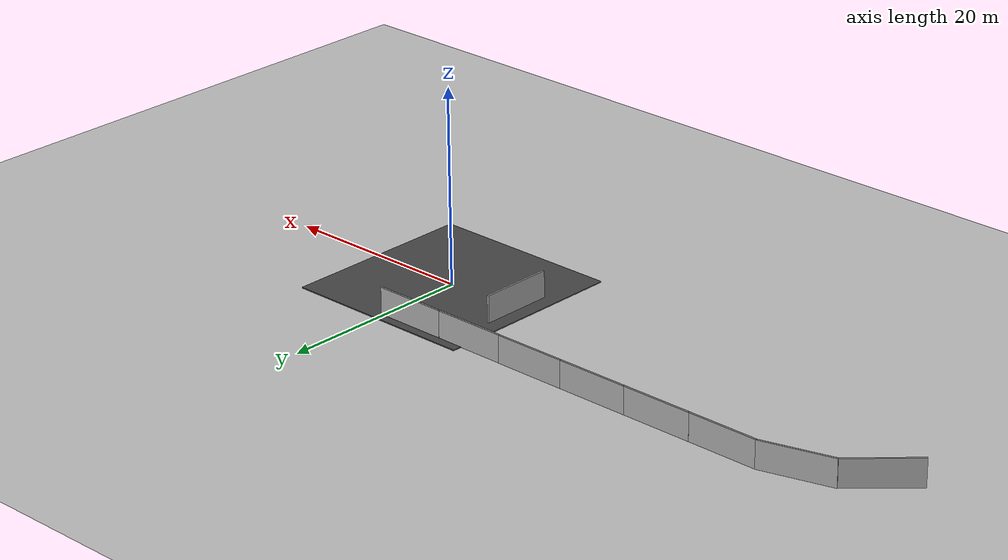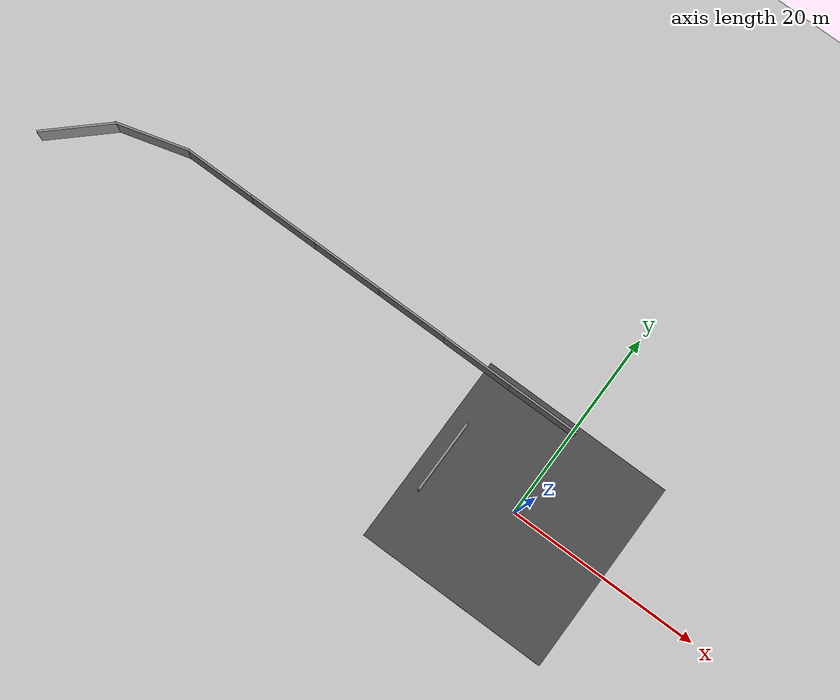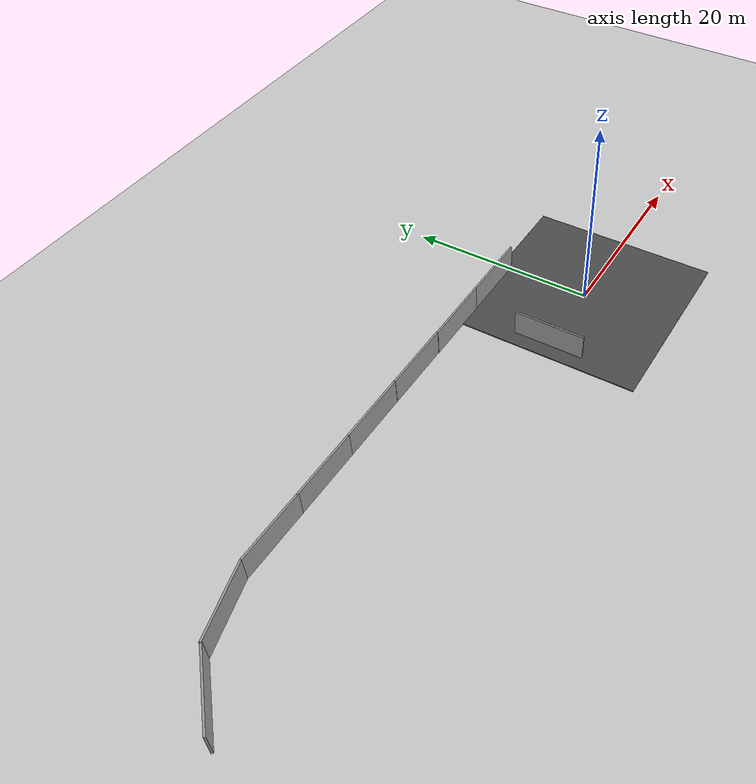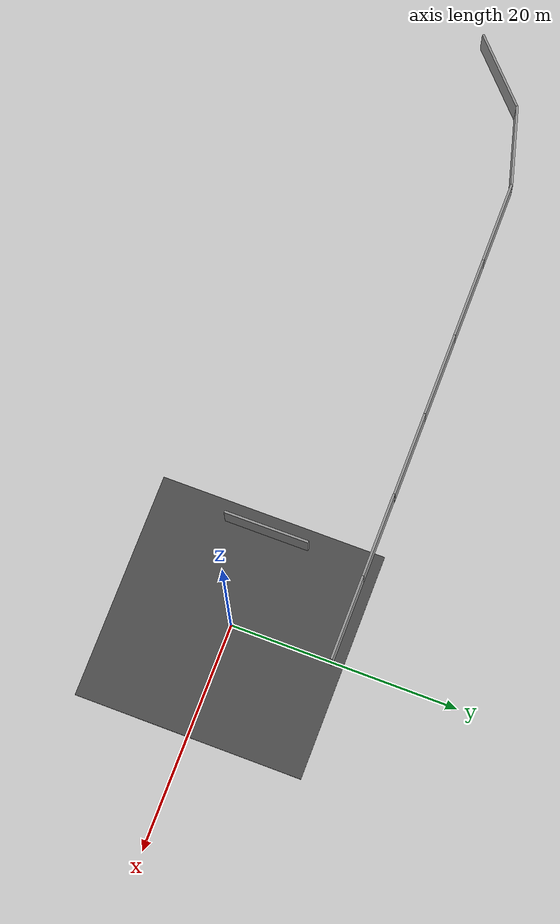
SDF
<sdf version="1.6">
 <world name="default">
  <light name="sun" type="directional">
   <pose>0 0 10 0 -0 0</pose>
   <diffuse>0.8 0.8 0.8 1</diffuse>
   <specular>0.2 0.2 0.2 1</specular>
   <attenuation>
    <range>1000</range>
    <constant>0.9</constant>
    <linear>0.01</linear>
    <quadratic>0.001</quadratic>
   </attenuation>
   <direction>-0.5 0.1 -0.9</direction>
  </light>
  <model name="ground_plane">
   <static>1</static>
   <link name="link">
    <collision name="collision">
     <geometry><plane><normal>0 0 1</normal><size>100 100</size></plane></geometry>
     <surface><friction><ode><mu>100</mu><mu2>50</mu2></ode></friction></surface>
    </collision>
    <visual name="visual">
     <cast_shadows>0</cast_shadows>
     <geometry><plane><normal>0 0 1</normal><size>100 100</size></plane></geometry>
     <material>
      <script><uri>file://media/materials/scripts/gazebo.material</uri><name>Gazebo/Grey</name></script>
     </material>
    </visual>
   </link>
  </model>
  <model name="asphalt_plane">
   <static>1</static>
   <link name="link">
    <collision name="collision"><geometry><box><size>20 20 0.1</size></box></geometry></collision>
    <visual name="visual">
     <cast_shadows>0</cast_shadows>
     <geometry><box><size>20 20 0.1</size></box></geometry>
     <material>
      <script>
       <uri>model://asphalt_plane/materials/scripts</uri>
       <uri>model://asphalt_plane/materials/textures</uri>
       <name>vrc/asphalt</name>
      </script>
     </material>
    </visual>
   </link>
  </model>
  <physics name="default_physics" default="0" type="ode">
   <ode>
    <solver>
     <type>quick</type>
     <iters>10</iters>
     <sor>1.3</sor>
     <use_dynamic_moi_rescaling>0</use_dynamic_moi_rescaling>
    </solver>
    <constraints>
     <cfm>0</cfm>
     <erp>0.2</erp>
     <contact_max_correcting_vel>100</contact_max_correcting_vel>
     <contact_surface_layer>0.001</contact_surface_layer>
    </constraints>
   </ode>
   <max_step_size>0.002</max_step_size>
   <real_time_factor>1</real_time_factor>
   <real_time_update_rate>500</real_time_update_rate>
  </physics>
  <model name="grey_wall">
   <static>1</static>
   <link name="link">
    <pose>0 0 1.4 0 -0 0</pose>
    <collision name="collision"><geometry><box><size>7.5 0.2 2.8</size></box></geometry></collision>
    <visual name="visual">
     <cast_shadows>0</cast_shadows>
     <geometry><box><size>7.5 0.2 2.8</size></box></geometry>
     <material>
      <script>
       <uri>model://grey_wall/materials/scripts</uri>
       <uri>model://grey_wall/materials/textures</uri>
       <name>vrc/grey_wall</name>
      </script>
     </material>
    </visual>
   </link>
   <pose>-8.34545 0 0 0 0 -1.57</pose>
  </model>
  <model name="grey_wall2">
   <static>1</static>
   <link name="link">
    <pose>0 0 1.4 0 -0 0</pose>
    <collision name="collision"><geometry><box><size>7.5 0.2 2.8</size></box></geometry></collision>
    <visual name="visual">
     <cast_shadows>0</cast_shadows>
     <geometry><box><size>7.5 0.2 2.8</size></box></geometry>
     <material>
      <script>
       <uri>model://grey_wall/materials/scripts</uri>
       <uri>model://grey_wall/materials/textures</uri>
       <name>vrc/grey_wall</name>
      </script>
     </material>
    </visual>
   </link>
   <pose>-3.5 9 0 0 -0 0</pose>
  </model>
  <gravity>0 0 -9.8066</gravity>
  <magnetic_field>6e-06 2.3e-05 -4.2e-05</magnetic_field>
  <atmosphere type="adiabatic"/>
  <scene><ambient>0.4 0.4 0.4 1</ambient><background>0.7 0.7 0.7 1</background><shadows>1</shadows></scene>
  <spherical_coordinates>
   <surface_model>EARTH_WGS84</surface_model>
   <latitude_deg>0</latitude_deg>
   <longitude_deg>0</longitude_deg>
   <elevation>0</elevation>
   <heading_deg>0</heading_deg>
  </spherical_coordinates>
  <model name="grey_wall2_clone">
   <static>1</static>
   <link name="link">
    <pose>0 0 1.4 0 -0 0</pose>
    <collision name="collision"><geometry><box><size>7.5 0.2 2.8</size></box></geometry></collision>
    <visual name="visual">
     <cast_shadows>0</cast_shadows>
     <geometry><box><size>7.5 0.2 2.8</size></box></geometry>
     <material>
      <script>
       <uri>model://grey_wall/materials/scripts</uri>
       <uri>model://grey_wall/materials/textures</uri>
       <name>vrc/grey_wall</name>
      </script>
     </material>
    </visual>
   </link>
   <pose>-11.0071 9.00248 0 0 -0 0</pose>
  </model>
  <model name="grey_wall2_clone_0">
   <static>1</static>
   <link name="link">
    <pose>0 0 1.4 0 -0 0</pose>
    <collision name="collision"><geometry><box><size>7.5 0.2 2.8</size></box></geometry></collision>
    <visual name="visual">
     <cast_shadows>0</cast_shadows>
     <geometry><box><size>7.5 0.2 2.8</size></box></geometry>
     <material>
      <script>
       <uri>model://grey_wall/materials/scripts</uri>
       <uri>model://grey_wall/materials/textures</uri>
       <name>vrc/grey_wall</name>
      </script>
     </material>
    </visual>
   </link>
   <pose>-18.5083 9.02979 0 0 -0 0</pose>
  </model>
  <model name="grey_wall2_clone_0_clone">
   <static>1</static>
   <link name="link">
    <pose>0 0 1.4 0 -0 0</pose>
    <collision name="collision"><geometry><box><size>7.5 0.2 2.8</size></box></geometry></collision>
    <visual name="visual">
     <cast_shadows>0</cast_shadows>
     <geometry><box><size>7.5 0.2 2.8</size></box></geometry>
     <material>
      <script>
       <uri>model://grey_wall/materials/scripts</uri>
       <uri>model://grey_wall/materials/textures</uri>
       <name>vrc/grey_wall</name>
      </script>
     </material>
    </visual>
   </link>
   <pose>-26.0259 9.02918 0 0 -0 0</pose>
  </model>
  <model name="grey_wall2_clone_0_clone_0">
   <static>1</static>
   <link name="link">
    <pose>0 0 1.4 0 -0 0</pose>
    <collision name="collision"><geometry><box><size>7.5 0.2 2.8</size></box></geometry></collision>
    <visual name="visual">
     <cast_shadows>0</cast_shadows>
     <geometry><box><size>7.5 0.2 2.8</size></box></geometry>
     <material>
      <script>
       <uri>model://grey_wall/materials/scripts</uri>
       <uri>model://grey_wall/materials/textures</uri>
       <name>vrc/grey_wall</name>
      </script>
     </material>
    </visual>
   </link>
   <pose>-33.4516 9.02141 0 0 -0 0</pose>
  </model>
  <model name="grey_wall2_clone_0_clone_0_clone">
   <static>1</static>
   <link name="link">
    <pose>0 0 1.4 0 -0 0</pose>
    <collision name="collision"><geometry><box><size>7.5 0.2 2.8</size></box></geometry></collision>
    <visual name="visual">
     <cast_shadows>0</cast_shadows>
     <geometry><box><size>7.5 0.2 2.8</size></box></geometry>
     <material>
      <script>
       <uri>model://grey_wall/materials/scripts</uri>
       <uri>model://grey_wall/materials/textures</uri>
       <name>vrc/grey_wall</name>
      </script>
     </material>
    </visual>
   </link>
   <pose>-40.8096 9.01785 0 0 -0 0</pose>
  </model>
  <model name="grey_wall2_clone_0_clone_0_clone_clone">
   <static>1</static>
   <link name="link">
    <pose>0 0 1.4 0 -0 0</pose>
    <collision name="collision"><geometry><box><size>7.5 0.2 2.8</size></box></geometry></collision>
    <visual name="visual">
     <cast_shadows>0</cast_shadows>
     <geometry><box><size>7.5 0.2 2.8</size></box></geometry>
     <material>
      <script>
       <uri>model://grey_wall/materials/scripts</uri>
       <uri>model://grey_wall/materials/textures</uri>
       <name>vrc/grey_wall</name>
      </script>
     </material>
    </visual>
   </link>
   <pose>-48.1309 8.03301 0 0 -0 0.271922</pose>
  </model>
  <model name="grey_wall2_clone_0_clone_0_clone_clone_clone">
   <static>1</static>
   <link name="link">
    <pose>0 0 1.4 0 -0 0</pose>
    <collision name="collision"><geometry><box><size>7.5 0.2 2.8</size></box></geometry></collision>
    <visual name="visual">
     <cast_shadows>0</cast_shadows>
     <geometry><box><size>7.5 0.2 2.8</size></box></geometry>
     <material>
      <script>
       <uri>model://grey_wall/materials/scripts</uri>
       <uri>model://grey_wall/materials/textures</uri>
       <name>vrc/grey_wall</name>
      </script>
     </material>
    </visual>
   </link>
   <pose>-54.3964 4.48803 0 0 -0 0.74769</pose>
  </model>
 </world>
</sdf>
